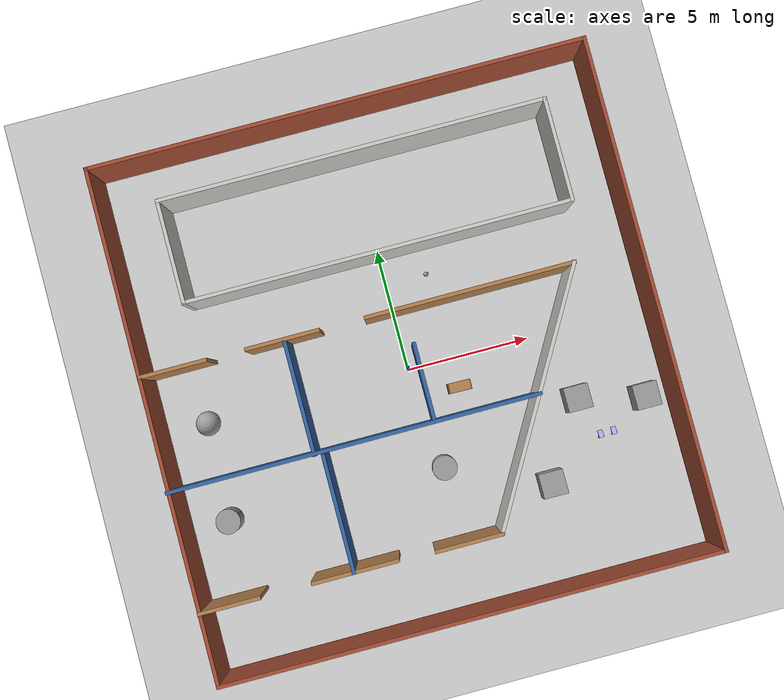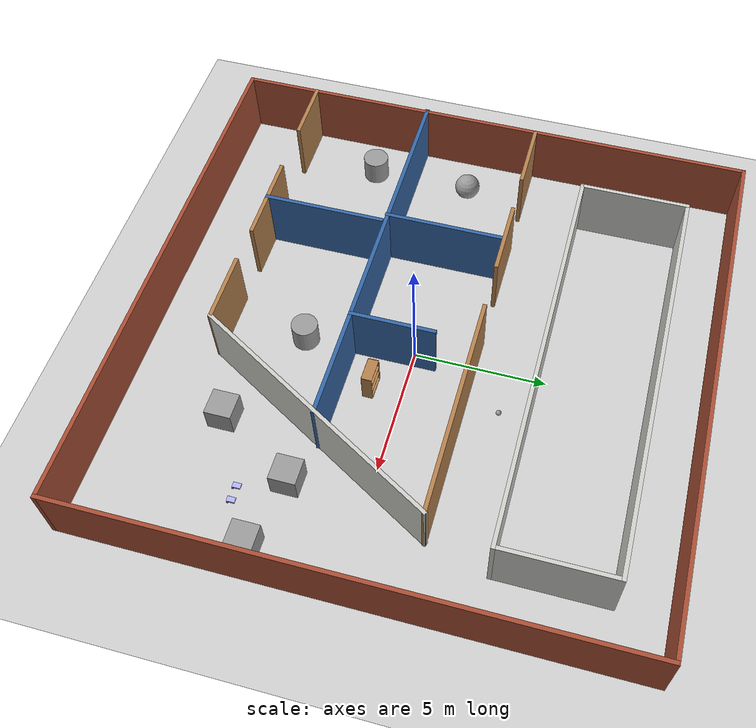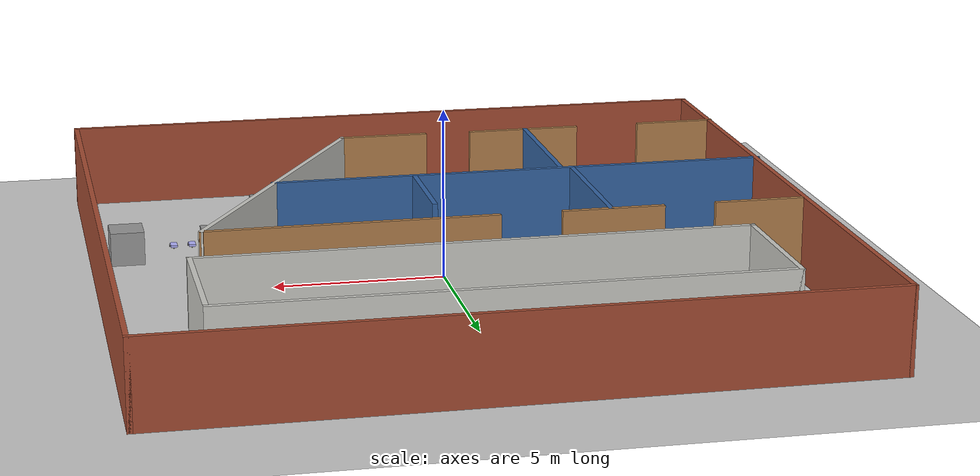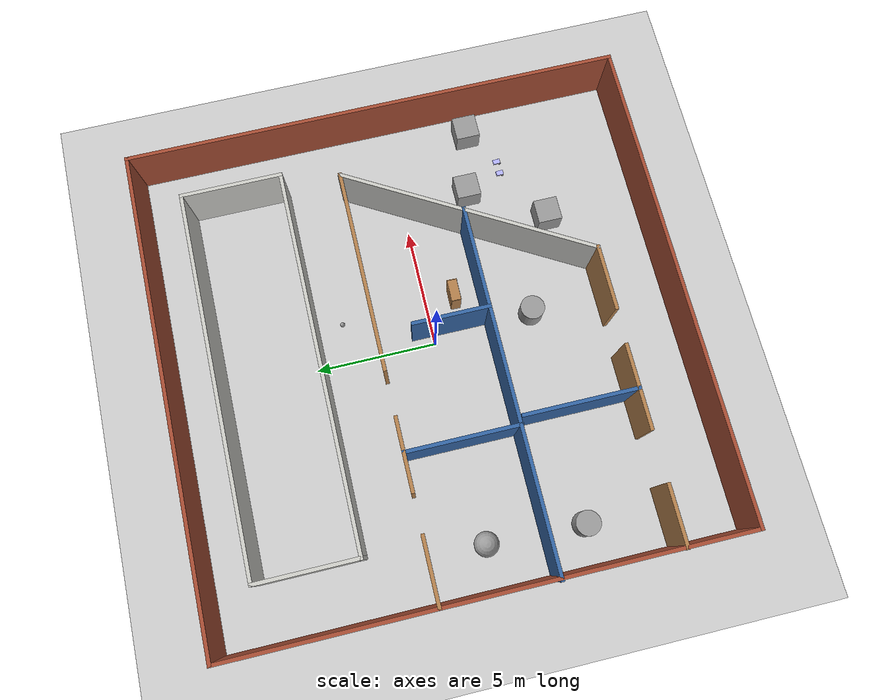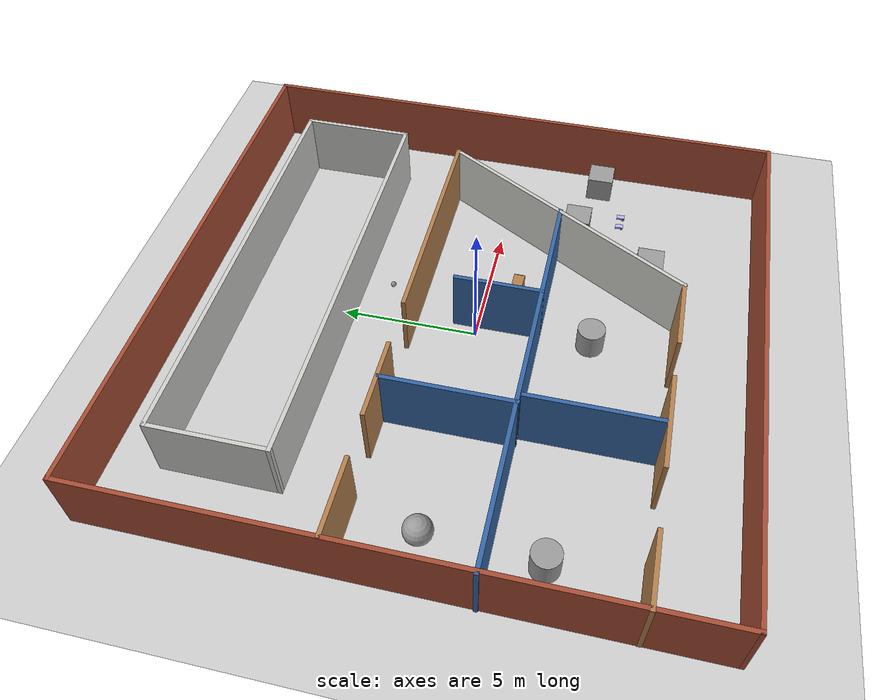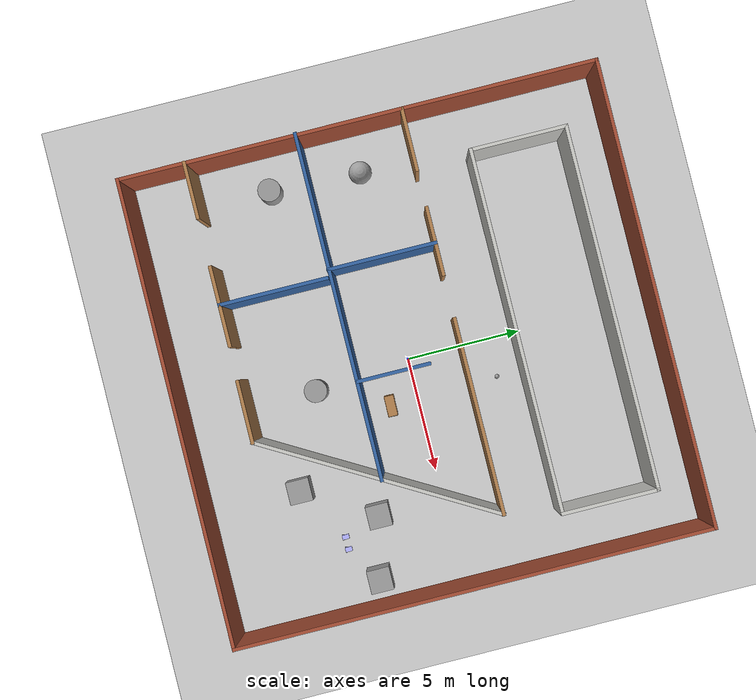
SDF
<sdf version="1.6">
 <world name="default">
  <light name="sun" type="directional">
   <pose>0 0 10 0 -0 0</pose>
   <diffuse>0.8 0.8 0.8 1</diffuse>
   <specular>0.2 0.2 0.2 1</specular>
   <attenuation>
    <range>1000</range>
    <constant>0.9</constant>
    <linear>0.01</linear>
    <quadratic>0.001</quadratic>
   </attenuation>
   <direction>-0.5 0.1 -0.9</direction>
  </light>
  <model name="ground_plane">
   <static>1</static>
   <link name="link">
    <collision name="collision">
     <geometry><plane><normal>0 0 1</normal><size>100 100</size></plane></geometry>
     <surface>
      <contact><collide_bitmask>65535</collide_bitmask></contact>
      <friction><ode><mu>100</mu><mu2>50</mu2></ode></friction>
     </surface>
    </collision>
    <visual name="visual">
     <cast_shadows>0</cast_shadows>
     <geometry><plane><normal>0 0 1</normal><size>100 100</size></plane></geometry>
     <material>
      <script><uri>file://media/materials/scripts/gazebo.material</uri><name>Gazebo/Grey</name></script>
     </material>
    </visual>
   </link>
  </model>
  <gravity>0 0 -9.8</gravity>
  <magnetic_field>6e-06 2.3e-05 -4.2e-05</magnetic_field>
  <atmosphere type="adiabatic"/>
  <physics name="default_physics" default="0" type="ode">
   <max_step_size>0.001</max_step_size>
   <real_time_factor>1</real_time_factor>
   <real_time_update_rate>1000</real_time_update_rate>
  </physics>
  <scene><ambient>0.4 0.4 0.4 1</ambient><background>0.7 0.7 0.7 1</background><shadows>1</shadows></scene>
  <audio><device>default</device></audio>
  <spherical_coordinates>
   <surface_model>EARTH_WGS84</surface_model>
   <latitude_deg>0</latitude_deg>
   <longitude_deg>0</longitude_deg>
   <elevation>0</elevation>
   <heading_deg>0</heading_deg>
  </spherical_coordinates>
  <model name="hostelM1">
   <pose>-0.12977 0.39552 0 0 -0 0</pose>
   <link name="Wall_10">
    <collision name="Wall_10_Collision">
     <geometry><box><size>4.25 0.15 2.5</size></box></geometry>
     <pose>0 0 1.25 0 -0 0</pose>
    </collision>
    <visual name="Wall_10_Visual">
     <pose>0 0 1.25 0 -0 0</pose>
     <geometry><box><size>4.25 0.15 2.5</size></box></geometry>
     <material>
      <script><uri>file://media/materials/scripts/gazebo.material</uri><name>Gazebo/CeilingTiled</name></script>
      <ambient>1 1 1 1</ambient>
     </material>
     <meta><layer>0</layer></meta>
    </visual>
    <pose>7.95036 6.33647 0 0 -0 -1.5708</pose>
   </link>
   <link name="Wall_11">
    <collision name="Wall_11_Collision">
     <geometry><box><size>15.75 0.15 2.5</size></box></geometry>
     <pose>0 0 1.25 0 -0 0</pose>
    </collision>
    <visual name="Wall_11_Visual">
     <pose>0 0 1.25 0 -0 0</pose>
     <geometry><box><size>15.75 0.15 2.5</size></box></geometry>
     <material>
      <script><uri>file://media/materials/scripts/gazebo.material</uri><name>Gazebo/CeilingTiled</name></script>
      <ambient>1 1 1 1</ambient>
     </material>
     <meta><layer>0</layer></meta>
    </visual>
    <pose>0.15036 4.28647 0 0 -0 3.14159</pose>
   </link>
   <link name="Wall_12">
    <collision name="Wall_12_Collision">
     <geometry><box><size>4.25 0.15 2.5</size></box></geometry>
     <pose>0 0 1.25 0 -0 0</pose>
    </collision>
    <visual name="Wall_12_Visual">
     <pose>0 0 1.25 0 -0 0</pose>
     <geometry><box><size>4.25 0.15 2.5</size></box></geometry>
     <material>
      <script><uri>file://media/materials/scripts/gazebo.material</uri><name>Gazebo/CeilingTiled</name></script>
      <ambient>1 1 1 1</ambient>
     </material>
     <meta><layer>0</layer></meta>
    </visual>
    <pose>-7.64964 6.33647 0 0 -0 1.5708</pose>
   </link>
   <link name="Wall_14">
    <collision name="Wall_14_Collision">
     <geometry><box><size>2.75 0.15 2.5</size></box></geometry>
     <pose>0 0 1.25 0 -0 0</pose>
    </collision>
    <visual name="Wall_14_Visual">
     <pose>0 0 1.25 0 -0 0</pose>
     <geometry><box><size>2.75 0.15 2.5</size></box></geometry>
     <material>
      <script><uri>file://media/materials/scripts/gazebo.material</uri><name>Gazebo/Wood</name></script>
      <ambient>0.203922 0.396078 0.643137 1</ambient>
     </material>
     <meta><layer>0</layer></meta>
    </visual>
    <pose>-8.69606 1.91358 0 0 -0 0</pose>
   </link>
   <link name="Wall_17">
    <collision name="Wall_17_Collision">
     <geometry><box><size>3 0.15 2.5</size></box></geometry>
     <pose>0 0 1.25 0 -0 0</pose>
    </collision>
    <visual name="Wall_17_Visual">
     <pose>0 0 1.25 0 -0 0</pose>
     <geometry><box><size>3 0.15 2.5</size></box></geometry>
     <material>
      <script><uri>file://media/materials/scripts/gazebo.material</uri><name>Gazebo/Wood</name></script>
      <ambient>0.203922 0.396078 0.643137 1</ambient>
     </material>
     <meta><layer>0</layer></meta>
    </visual>
    <pose>-4.32323 1.91358 0 0 -0 0</pose>
   </link>
   <link name="Wall_20">
    <collision name="Wall_20_Collision">
     <geometry><box><size>8.5 0.15 2.5</size></box></geometry>
     <pose>0 0 1.25 0 -0 0</pose>
    </collision>
    <visual name="Wall_20_Visual">
     <pose>0 0 1.25 0 -0 0</pose>
     <geometry><box><size>8.5 0.15 2.5</size></box></geometry>
     <material>
      <script><uri>file://media/materials/scripts/gazebo.material</uri><name>Gazebo/Wood</name></script>
      <ambient>0.203922 0.396078 0.643137 1</ambient>
     </material>
     <meta><layer>0</layer></meta>
    </visual>
    <pose>3.20053 1.91358 0 0 -0 0</pose>
   </link>
   <link name="Wall_21">
    <collision name="Wall_21_Collision">
     <geometry><box><size>11 0.15 2.5</size></box></geometry>
     <pose>0 0 1.25 0 -0 0</pose>
    </collision>
    <visual name="Wall_21_Visual">
     <pose>0 0 1.25 0 -0 0</pose>
     <geometry><box><size>11 0.15 2.5</size></box></geometry>
     <material>
      <script><uri>file://media/materials/scripts/gazebo.material</uri><name>Gazebo/CeilingTiled</name></script>
      <ambient>1 1 1 1</ambient>
     </material>
     <meta><layer>0</layer></meta>
    </visual>
    <pose>4.66303 -2.78461 0 0 -0 -2.0944</pose>
   </link>
   <link name="Wall_22">
    <collision name="Wall_22_Collision">
     <geometry><box><size>2.75 0.15 2.5</size></box></geometry>
     <pose>0 0 1.25 0 -0 0</pose>
    </collision>
    <visual name="Wall_22_Visual">
     <pose>0 0 1.25 0 -0 0</pose>
     <geometry><box><size>2.75 0.15 2.5</size></box></geometry>
     <material>
      <script><uri>file://media/materials/scripts/gazebo.material</uri><name>Gazebo/Wood</name></script>
      <ambient>1 1 1 1</ambient>
     </material>
     <meta><layer>0</layer></meta>
    </visual>
    <pose>0.650531 -7.4828 0 0 -0 3.14159</pose>
   </link>
   <link name="Wall_24">
    <collision name="Wall_24_Collision">
     <geometry><box><size>3.5 0.15 2.5</size></box></geometry>
     <pose>0 0 1.25 0 -0 0</pose>
    </collision>
    <visual name="Wall_24_Visual">
     <pose>0 0 1.25 0 -0 0</pose>
     <geometry><box><size>3.5 0.15 2.5</size></box></geometry>
     <material>
      <script><uri>file://media/materials/scripts/gazebo.material</uri><name>Gazebo/Wood</name></script>
      <ambient>1 1 1 1</ambient>
     </material>
     <meta><layer>0</layer></meta>
    </visual>
    <pose>-3.86314 -7.43166 0 0 -0 3.14159</pose>
   </link>
   <link name="Wall_26">
    <collision name="Wall_26_Collision">
     <geometry><box><size>2.5 0.15 2.5</size></box></geometry>
     <pose>0 0 1.25 0 -0 0</pose>
    </collision>
    <visual name="Wall_26_Visual">
     <pose>0 0 1.25 0 -0 0</pose>
     <geometry><box><size>2.5 0.15 2.5</size></box></geometry>
     <material>
      <script><uri>file://media/materials/scripts/gazebo.material</uri><name>Gazebo/Wood</name></script>
      <ambient>1 1 1 1</ambient>
     </material>
     <meta><layer>0</layer></meta>
    </visual>
    <pose>-8.8651 -7.43166 0 0 -0 3.14159</pose>
   </link>
   <link name="Wall_28">
    <collision name="Wall_28_Collision">
     <geometry><box><size>15 0.15 2.5</size></box></geometry>
     <pose>0 0 1.25 0 -0 0</pose>
    </collision>
    <visual name="Wall_28_Visual">
     <pose>0 0 1.25 0 -0 0</pose>
     <geometry><box><size>15 0.15 2.5</size></box></geometry>
     <material>
      <script><uri>file://media/materials/scripts/gazebo.material</uri><name>Gazebo/Grey</name></script>
      <ambient>0.203922 0.396078 0.643137 1</ambient>
     </material>
     <meta><layer>0</layer></meta>
    </visual>
    <pose>-2.65197 -2.6579 0 0 -0 0</pose>
   </link>
   <link name="Wall_32">
    <collision name="Wall_32_Collision">
     <geometry><box><size>4.75 0.15 2.5</size></box></geometry>
     <pose>0 0 1.25 0 -0 0</pose>
    </collision>
    <visual name="Wall_32_Visual">
     <pose>0 0 1.25 0 -0 0</pose>
     <geometry><box><size>4.75 0.15 2.5</size></box></geometry>
     <material>
      <script><uri>file://media/materials/scripts/gazebo.material</uri><name>Gazebo/Grey</name></script>
      <ambient>0.203922 0.396078 0.643137 1</ambient>
     </material>
     <meta><layer>0</layer></meta>
    </visual>
    <pose>-4.25137 -0.386422 0 0 -0 -1.5708</pose>
   </link>
   <link name="Wall_34">
    <collision name="Wall_34_Collision">
     <geometry><box><size>4.75 0.15 2.5</size></box></geometry>
     <pose>0 0 1.25 0 -0 0</pose>
    </collision>
    <visual name="Wall_34_Visual">
     <pose>0 0 1.25 0 -0 0</pose>
     <geometry><box><size>4.75 0.15 2.5</size></box></geometry>
     <material>
      <script><uri>file://media/materials/scripts/gazebo.material</uri><name>Gazebo/Grey</name></script>
      <ambient>0.203922 0.396078 0.643137 1</ambient>
     </material>
     <meta><layer>0</layer></meta>
    </visual>
    <pose>-3.92773 -5.13166 0 0 -0 1.5708</pose>
   </link>
   <link name="Wall_36">
    <collision name="Wall_36_Collision">
     <geometry><box><size>3.25 0.15 2.5</size></box></geometry>
     <pose>0 0 1.25 0 -0 0</pose>
    </collision>
    <visual name="Wall_36_Visual">
     <pose>0 0 1.25 0 -0 0</pose>
     <geometry><box><size>3.25 0.15 2.5</size></box></geometry>
     <material>
      <script><uri>file://media/materials/scripts/gazebo.material</uri><name>Gazebo/Grey</name></script>
      <ambient>0.203922 0.396078 0.643137 1</ambient>
     </material>
     <meta><layer>0</layer></meta>
    </visual>
    <pose>0.562842 -1.1079 0 0 -0 1.5708</pose>
   </link>
   <link name="Wall_4">
    <collision name="Wall_4_Collision">
     <geometry><box><size>20.25 0.15 2.5</size></box></geometry>
     <pose>0 0 1.25 0 -0 0</pose>
    </collision>
    <visual name="Wall_4_Visual">
     <pose>0 0 1.25 0 -0 0</pose>
     <geometry><box><size>20.25 0.15 2.5</size></box></geometry>
     <material>
      <script><uri>file://media/materials/scripts/gazebo.material</uri><name>Gazebo/Bricks</name></script>
      <ambient>1 1 1 1</ambient>
     </material>
     <meta><layer>0</layer></meta>
    </visual>
    <pose>0.026973 10.3 0 0 -0 0</pose>
   </link>
   <link name="Wall_5">
    <collision name="Wall_5_Collision">
     <geometry><box><size>20.75 0.15 2.5</size></box></geometry>
     <pose>0 0 1.25 0 -0 0</pose>
    </collision>
    <visual name="Wall_5_Visual">
     <pose>0 0 1.25 0 -0 0</pose>
     <geometry><box><size>20.75 0.15 2.5</size></box></geometry>
     <material>
      <script><uri>file://media/materials/scripts/gazebo.material</uri><name>Gazebo/Bricks</name></script>
      <ambient>1 1 1 1</ambient>
     </material>
     <meta><layer>0</layer></meta>
    </visual>
    <pose>10.077 0 0 0 -0 -1.5708</pose>
   </link>
   <link name="Wall_6">
    <collision name="Wall_6_Collision">
     <geometry><box><size>20.25 0.15 2.5</size></box></geometry>
     <pose>0 0 1.25 0 -0 0</pose>
    </collision>
    <visual name="Wall_6_Visual">
     <pose>0 0 1.25 0 -0 0</pose>
     <geometry><box><size>20.25 0.15 2.5</size></box></geometry>
     <material>
      <script><uri>file://media/materials/scripts/gazebo.material</uri><name>Gazebo/Bricks</name></script>
      <ambient>1 1 1 1</ambient>
     </material>
     <meta><layer>0</layer></meta>
    </visual>
    <pose>0.026973 -10.3 0 0 -0 3.14159</pose>
   </link>
   <link name="Wall_7">
    <collision name="Wall_7_Collision">
     <geometry><box><size>20.75 0.15 2.5</size></box></geometry>
     <pose>0 0 1.25 0 -0 0</pose>
    </collision>
    <visual name="Wall_7_Visual">
     <pose>0 0 1.25 0 -0 0</pose>
     <geometry><box><size>20.75 0.15 2.5</size></box></geometry>
     <material>
      <script><uri>file://media/materials/scripts/gazebo.material</uri><name>Gazebo/Bricks</name></script>
      <ambient>1 1 1 1</ambient>
     </material>
     <meta><layer>0</layer></meta>
    </visual>
    <pose>-10.023 0 0 0 -0 1.5708</pose>
   </link>
   <link name="Wall_9">
    <collision name="Wall_9_Collision">
     <geometry><box><size>15.75 0.15 2.5</size></box></geometry>
     <pose>0 0 1.25 0 -0 0</pose>
    </collision>
    <visual name="Wall_9_Visual">
     <pose>0 0 1.25 0 -0 0</pose>
     <geometry><box><size>15.75 0.15 2.5</size></box></geometry>
     <material>
      <script><uri>file://media/materials/scripts/gazebo.material</uri><name>Gazebo/CeilingTiled</name></script>
      <ambient>1 1 1 1</ambient>
     </material>
     <meta><layer>0</layer></meta>
    </visual>
    <pose>0.15036 8.38647 0 0 -0 0</pose>
   </link>
   <static>1</static>
  </model>
  <model name="bookshelf">
   <static>1</static>
   <link name="link">
    <inertial><mass>1</mass></inertial>
    <collision name="back">
     <pose>0 0.005 0.6 0 -0 0</pose>
     <geometry><box><size>0.9 0.01 1.2</size></box></geometry>
    </collision>
    <visual name="visual1">
     <pose>0 0.005 0.6 0 -0 0</pose>
     <geometry><box><size>0.9 0.01 1.2</size></box></geometry>
     <material>
      <script><uri>file://media/materials/scripts/gazebo.material</uri><name>Gazebo/Wood</name></script>
     </material>
    </visual>
    <collision name="left_side">
     <pose>0.45 -0.195 0.6 0 -0 0</pose>
     <geometry><box><size>0.02 0.4 1.2</size></box></geometry>
    </collision>
    <visual name="visual2">
     <pose>0.45 -0.195 0.6 0 -0 0</pose>
     <geometry><box><size>0.02 0.4 1.2</size></box></geometry>
     <material>
      <script><uri>file://media/materials/scripts/gazebo.material</uri><name>Gazebo/Wood</name></script>
     </material>
    </visual>
    <collision name="right_side">
     <pose>-0.45 -0.195 0.6 0 -0 0</pose>
     <geometry><box><size>0.02 0.4 1.2</size></box></geometry>
    </collision>
    <visual name="visual3">
     <pose>-0.45 -0.195 0.6 0 -0 0</pose>
     <geometry><box><size>0.02 0.4 1.2</size></box></geometry>
     <material>
      <script><uri>file://media/materials/scripts/gazebo.material</uri><name>Gazebo/Wood</name></script>
     </material>
    </visual>
    <collision name="bottom">
     <pose>0 -0.195 0.03 0 -0 0</pose>
     <geometry><box><size>0.88 0.4 0.06</size></box></geometry>
    </collision>
    <visual name="visual4">
     <pose>0 -0.195 0.03 0 -0 0</pose>
     <geometry><box><size>0.88 0.4 0.06</size></box></geometry>
     <material>
      <script><uri>file://media/materials/scripts/gazebo.material</uri><name>Gazebo/Wood</name></script>
     </material>
    </visual>
    <collision name="top">
     <pose>0 -0.195 1.19 0 -0 0</pose>
     <geometry><box><size>0.88 0.4 0.02</size></box></geometry>
    </collision>
    <visual name="visual5">
     <pose>0 -0.195 1.19 0 -0 0</pose>
     <geometry><box><size>0.88 0.4 0.02</size></box></geometry>
     <material>
      <script><uri>file://media/materials/scripts/gazebo.material</uri><name>Gazebo/Wood</name></script>
     </material>
    </visual>
    <collision name="low_shelf">
     <pose>0 -0.195 0.43 0 -0 0</pose>
     <geometry><box><size>0.88 0.4 0.02</size></box></geometry>
    </collision>
    <visual name="visual6">
     <pose>0 -0.195 0.43 0 -0 0</pose>
     <geometry><box><size>0.88 0.4 0.02</size></box></geometry>
     <material>
      <script><uri>file://media/materials/scripts/gazebo.material</uri><name>Gazebo/Wood</name></script>
     </material>
    </visual>
    <collision name="high_shelf">
     <pose>0 -0.195 0.8 0 -0 0</pose>
     <geometry><box><size>0.88 0.4 0.02</size></box></geometry>
    </collision>
    <visual name="visual7">
     <pose>0 -0.195 0.8 0 -0 0</pose>
     <geometry><box><size>0.88 0.4 0.02</size></box></geometry>
     <material>
      <script><uri>file://media/materials/scripts/gazebo.material</uri><name>Gazebo/Wood</name></script>
     </material>
    </visual>
   </link>
   <pose>1.78073 -1.38425 0 0 -0 3.12902</pose>
  </model>
  <model name="pseudoAsimov">
   <link name="link_0">
    <inertial>
     <mass>1</mass>
     <inertia>
      <ixx>0.166667</ixx>
      <ixy>0</ixy>
      <ixz>0</ixz>
      <iyy>0.166667</iyy>
      <iyz>0</iyz>
      <izz>0.166667</izz>
     </inertia>
    </inertial>
    <pose>0 0 0.05565 -0 -0 -0</pose>
    <visual name="visual">
     <geometry><box><size>0.2 0.306 0.07</size></box></geometry>
     <material>
      <lighting>1</lighting>
      <script><uri>file://media/materials/scripts/gazebo.material</uri><name>Gazebo/Grey</name></script>
      <shader type="vertex"><normal_map>__default__</normal_map></shader>
      <ambient>0.3 0.3 1 1</ambient>
      <diffuse>0.7 0.7 1 1</diffuse>
      <specular>0.01 0.01 1 1</specular>
      <emissive>0 0 0 1</emissive>
     </material>
    </visual>
    <collision name="collision">
     <geometry><box><size>0.2 0.306 0.07</size></box></geometry>
     <surface>
      <friction>
       <ode><mu>1</mu><mu2>1</mu2><fdir1>0 0 0</fdir1><slip1>0</slip1><slip2>0</slip2></ode>
       <torsional>
        <coefficient>1</coefficient>
        <patch_radius>0</patch_radius>
        <surface_radius>0</surface_radius>
        <use_patch_radius>1</use_patch_radius>
        <ode><slip>0</slip></ode>
       </torsional>
      </friction>
      <bounce><restitution_coefficient>0</restitution_coefficient><threshold>1e+06</threshold></bounce>
      <contact>
       <collide_without_contact>0</collide_without_contact>
       <collide_without_contact_bitmask>1</collide_without_contact_bitmask>
       <collide_bitmask>1</collide_bitmask>
       <ode>
        <soft_cfm>0</soft_cfm>
        <soft_erp>0.2</soft_erp>
        <kp>1e+13</kp>
        <kd>1</kd>
        <max_vel>0.01</max_vel>
        <min_depth>0</min_depth>
       </ode>
       <bullet>
        <split_impulse>1</split_impulse>
        <split_impulse_penetration_threshold>-0.01</split_impulse_penetration_threshold>
        <soft_cfm>0</soft_cfm>
        <soft_erp>0.2</soft_erp>
        <kp>1e+13</kp>
        <kd>1</kd>
       </bullet>
      </contact>
     </surface>
    </collision>
   </link>
   <link name="link_0_0_clone">
    <inertial>
     <mass>1</mass>
     <inertia><ixx>0.145833</ixx><ixy>0</ixy><ixz>0</ixz><iyy>0.145833</iyy><iyz>0</iyz><izz>0.125</izz></inertia>
    </inertial>
    <pose>0.110004 -0.10935 0.016023 -2.8e-05 -1.5707 2.8e-05</pose>
    <visual name="visual_0">
     <geometry><cylinder><radius>0.04365</radius><length>0.02</length></cylinder></geometry>
     <material>
      <lighting>1</lighting>
      <script><uri>file://media/materials/scripts/gazebo.material</uri><name>Gazebo/Grey</name></script>
      <shader type="vertex"><normal_map>__default__</normal_map></shader>
      <ambient>0 0 0 1</ambient>
      <diffuse>0.7 0.7 0.7 1</diffuse>
      <specular>0.01 0.01 0.01 1</specular>
      <emissive>0 0 0 1</emissive>
     </material>
    </visual>
    <collision name="collision">
     <geometry><cylinder><radius>0.04365</radius><length>0.02</length></cylinder></geometry>
     <surface>
      <friction>
       <ode><mu>1</mu><mu2>1</mu2><fdir1>0 0 0</fdir1><slip1>0</slip1><slip2>0</slip2></ode>
       <torsional>
        <coefficient>1</coefficient>
        <patch_radius>0</patch_radius>
        <surface_radius>0</surface_radius>
        <use_patch_radius>1</use_patch_radius>
        <ode><slip>0</slip></ode>
       </torsional>
      </friction>
      <bounce><restitution_coefficient>0</restitution_coefficient><threshold>1e+06</threshold></bounce>
      <contact>
       <collide_without_contact>0</collide_without_contact>
       <collide_without_contact_bitmask>1</collide_without_contact_bitmask>
       <collide_bitmask>1</collide_bitmask>
       <ode>
        <soft_cfm>0</soft_cfm>
        <soft_erp>0.2</soft_erp>
        <kp>1e+13</kp>
        <kd>1</kd>
        <max_vel>0.01</max_vel>
        <min_depth>0</min_depth>
       </ode>
       <bullet>
        <split_impulse>1</split_impulse>
        <split_impulse_penetration_threshold>-0.01</split_impulse_penetration_threshold>
        <soft_cfm>0</soft_cfm>
        <soft_erp>0.2</soft_erp>
        <kp>1e+13</kp>
        <kd>1</kd>
       </bullet>
      </contact>
     </surface>
    </collision>
   </link>
   <link name="link_0_0_clone_clone">
    <inertial>
     <mass>1</mass>
     <inertia><ixx>0.145833</ixx><ixy>0</ixy><ixz>0</ixz><iyy>0.145833</iyy><iyz>0</iyz><izz>0.125</izz></inertia>
    </inertial>
    <pose>-0.110004 -0.10935 0.016023 -2.8e-05 -1.5707 2.8e-05</pose>
    <visual name="visual_0">
     <geometry><cylinder><radius>0.04365</radius><length>0.02</length></cylinder></geometry>
     <material>
      <lighting>1</lighting>
      <script><uri>file://media/materials/scripts/gazebo.material</uri><name>Gazebo/Grey</name></script>
      <shader type="vertex"><normal_map>__default__</normal_map></shader>
      <ambient>0 0 0 1</ambient>
      <diffuse>0.7 0.7 0.7 1</diffuse>
      <specular>0.01 0.01 0.01 1</specular>
      <emissive>0 0 0 1</emissive>
     </material>
    </visual>
    <collision name="collision">
     <geometry><cylinder><radius>0.04365</radius><length>0.02</length></cylinder></geometry>
     <surface>
      <friction>
       <ode><mu>1</mu><mu2>1</mu2><fdir1>0 0 0</fdir1><slip1>0</slip1><slip2>0</slip2></ode>
       <torsional>
        <coefficient>1</coefficient>
        <patch_radius>0</patch_radius>
        <surface_radius>0</surface_radius>
        <use_patch_radius>1</use_patch_radius>
        <ode><slip>0</slip></ode>
       </torsional>
      </friction>
      <bounce><restitution_coefficient>0</restitution_coefficient><threshold>1e+06</threshold></bounce>
      <contact>
       <collide_without_contact>0</collide_without_contact>
       <collide_without_contact_bitmask>1</collide_without_contact_bitmask>
       <collide_bitmask>1</collide_bitmask>
       <ode>
        <soft_cfm>0</soft_cfm>
        <soft_erp>0.2</soft_erp>
        <kp>1e+13</kp>
        <kd>1</kd>
        <max_vel>0.01</max_vel>
        <min_depth>0</min_depth>
       </ode>
       <bullet>
        <split_impulse>1</split_impulse>
        <split_impulse_penetration_threshold>-0.01</split_impulse_penetration_threshold>
        <soft_cfm>0</soft_cfm>
        <soft_erp>0.2</soft_erp>
        <kp>1e+13</kp>
        <kd>1</kd>
       </bullet>
      </contact>
     </surface>
    </collision>
   </link>
   <link name="link_2">
    <inertial>
     <mass>1</mass>
     <inertia><ixx>0.1</ixx><ixy>0</ixy><ixz>0</ixz><iyy>0.1</iyy><iyz>0</iyz><izz>0.1</izz></inertia>
    </inertial>
    <pose>0.005527 0.128926 0.007614 -0 -0 -0</pose>
    <visual name="visual">
     <geometry><sphere><radius>0.02682</radius></sphere></geometry>
     <material>
      <lighting>1</lighting>
      <script><uri>file://media/materials/scripts/gazebo.material</uri><name>Gazebo/Grey</name></script>
      <shader type="vertex"><normal_map>__default__</normal_map></shader>
      <ambient>0.3 0.3 0.3 1</ambient>
      <diffuse>0.7 0.7 0.7 1</diffuse>
      <specular>0.01 0.01 0.01 1</specular>
      <emissive>0 0 0 1</emissive>
     </material>
    </visual>
    <collision name="collision">
     <geometry><sphere><radius>0.02682</radius></sphere></geometry>
     <surface>
      <friction>
       <ode><mu>1</mu><mu2>1</mu2><fdir1>0 0 0</fdir1><slip1>0</slip1><slip2>0</slip2></ode>
       <torsional>
        <coefficient>1</coefficient>
        <patch_radius>0</patch_radius>
        <surface_radius>0</surface_radius>
        <use_patch_radius>1</use_patch_radius>
        <ode><slip>0</slip></ode>
       </torsional>
      </friction>
      <bounce><restitution_coefficient>0</restitution_coefficient><threshold>1e+06</threshold></bounce>
      <contact>
       <collide_without_contact>0</collide_without_contact>
       <collide_without_contact_bitmask>1</collide_without_contact_bitmask>
       <collide_bitmask>1</collide_bitmask>
       <ode>
        <soft_cfm>0</soft_cfm>
        <soft_erp>0.2</soft_erp>
        <kp>1e+13</kp>
        <kd>1</kd>
        <max_vel>0.01</max_vel>
        <min_depth>0</min_depth>
       </ode>
       <bullet>
        <split_impulse>1</split_impulse>
        <split_impulse_penetration_threshold>-0.01</split_impulse_penetration_threshold>
        <soft_cfm>0</soft_cfm>
        <soft_erp>0.2</soft_erp>
        <kp>1e+13</kp>
        <kd>1</kd>
       </bullet>
      </contact>
     </surface>
    </collision>
   </link>
   <joint name="link_0_JOINT_4" type="revolute">
    <parent>link_0</parent>
    <child>link_0_0_clone_clone</child>
    <axis>
     <xyz>-0 -0 -1</xyz>
     <use_parent_model_frame>0</use_parent_model_frame>
     <limit>
      <lower>-1.79769e+308</lower>
      <upper>1.79769e+308</upper>
      <effort>-1</effort>
      <velocity>-1</velocity>
     </limit>
     <dynamics>
      <spring_reference>0</spring_reference>
      <spring_stiffness>0</spring_stiffness>
      <damping>0</damping>
      <friction>0</friction>
     </dynamics>
    </axis>
    <physics>
     <ode><limit><cfm>0</cfm><erp>0.2</erp></limit><suspension><cfm>0</cfm><erp>0.2</erp></suspension></ode>
    </physics>
   </joint>
   <joint name="link_0_JOINT_5" type="revolute">
    <parent>link_0</parent>
    <child>link_0_0_clone</child>
    <axis>
     <xyz>0 0 1</xyz>
     <use_parent_model_frame>0</use_parent_model_frame>
     <limit>
      <lower>-1.79769e+308</lower>
      <upper>1.79769e+308</upper>
      <effort>-1</effort>
      <velocity>-1</velocity>
     </limit>
     <dynamics>
      <spring_reference>0</spring_reference>
      <spring_stiffness>0</spring_stiffness>
      <damping>0</damping>
      <friction>0</friction>
     </dynamics>
    </axis>
    <physics>
     <ode><limit><cfm>0</cfm><erp>0.2</erp></limit><suspension><cfm>0</cfm><erp>0.2</erp></suspension></ode>
    </physics>
   </joint>
   <joint name="link_0_JOINT_6" type="ball">
    <parent>link_0</parent>
    <child>link_2</child>
    <physics>
     <ode><limit><cfm>0</cfm><erp>0.2</erp></limit><suspension><cfm>0</cfm><erp>0.2</erp></suspension></ode>
    </physics>
   </joint>
   <static>0</static>
   <pose>7.43546 -4.52953 0.023771 -0.035377 -4e-06 0.017092</pose>
  </model>
  <model name="robotTry2_0">
   <link name="link_0">
    <inertial>
     <mass>1</mass>
     <inertia>
      <ixx>0.166667</ixx>
      <ixy>0</ixy>
      <ixz>0</ixz>
      <iyy>0.166667</iyy>
      <iyz>0</iyz>
      <izz>0.166667</izz>
     </inertia>
    </inertial>
    <pose>0 0 0.05565 -0 -0 -0</pose>
    <visual name="visual">
     <geometry><box><size>0.2 0.306 0.07</size></box></geometry>
     <material>
      <lighting>1</lighting>
      <script><uri>file://media/materials/scripts/gazebo.material</uri><name>Gazebo/Grey</name></script>
      <shader type="vertex"><normal_map>__default__</normal_map></shader>
      <ambient>0.3 0.3 1 1</ambient>
      <diffuse>0.7 0.7 1 1</diffuse>
      <specular>0.01 0.01 1 1</specular>
      <emissive>0 0 0 1</emissive>
     </material>
    </visual>
    <collision name="collision">
     <geometry><box><size>0.2 0.306 0.07</size></box></geometry>
     <surface>
      <friction>
       <ode><mu>1</mu><mu2>1</mu2><fdir1>0 0 0</fdir1><slip1>0</slip1><slip2>0</slip2></ode>
       <torsional>
        <coefficient>1</coefficient>
        <patch_radius>0</patch_radius>
        <surface_radius>0</surface_radius>
        <use_patch_radius>1</use_patch_radius>
        <ode><slip>0</slip></ode>
       </torsional>
      </friction>
      <bounce><restitution_coefficient>0</restitution_coefficient><threshold>1e+06</threshold></bounce>
      <contact>
       <collide_without_contact>0</collide_without_contact>
       <collide_without_contact_bitmask>1</collide_without_contact_bitmask>
       <collide_bitmask>1</collide_bitmask>
       <ode>
        <soft_cfm>0</soft_cfm>
        <soft_erp>0.2</soft_erp>
        <kp>1e+13</kp>
        <kd>1</kd>
        <max_vel>0.01</max_vel>
        <min_depth>0</min_depth>
       </ode>
       <bullet>
        <split_impulse>1</split_impulse>
        <split_impulse_penetration_threshold>-0.01</split_impulse_penetration_threshold>
        <soft_cfm>0</soft_cfm>
        <soft_erp>0.2</soft_erp>
        <kp>1e+13</kp>
        <kd>1</kd>
       </bullet>
      </contact>
     </surface>
    </collision>
   </link>
   <link name="link_0_0_clone">
    <inertial>
     <mass>1</mass>
     <inertia><ixx>0.145833</ixx><ixy>0</ixy><ixz>0</ixz><iyy>0.145833</iyy><iyz>0</iyz><izz>0.125</izz></inertia>
    </inertial>
    <pose>0.110004 -0.10935 0.016023 -2.8e-05 -1.5707 2.8e-05</pose>
    <visual name="visual_0">
     <geometry><cylinder><radius>0.04365</radius><length>0.02</length></cylinder></geometry>
     <material>
      <lighting>1</lighting>
      <script><uri>file://media/materials/scripts/gazebo.material</uri><name>Gazebo/Grey</name></script>
      <shader type="vertex"><normal_map>__default__</normal_map></shader>
      <ambient>0 0 0 1</ambient>
      <diffuse>0.7 0.7 0.7 1</diffuse>
      <specular>0.01 0.01 0.01 1</specular>
      <emissive>0 0 0 1</emissive>
     </material>
    </visual>
    <collision name="collision">
     <geometry><cylinder><radius>0.04365</radius><length>0.02</length></cylinder></geometry>
     <surface>
      <friction>
       <ode><mu>1</mu><mu2>1</mu2><fdir1>0 0 0</fdir1><slip1>0</slip1><slip2>0</slip2></ode>
       <torsional>
        <coefficient>1</coefficient>
        <patch_radius>0</patch_radius>
        <surface_radius>0</surface_radius>
        <use_patch_radius>1</use_patch_radius>
        <ode><slip>0</slip></ode>
       </torsional>
      </friction>
      <bounce><restitution_coefficient>0</restitution_coefficient><threshold>1e+06</threshold></bounce>
      <contact>
       <collide_without_contact>0</collide_without_contact>
       <collide_without_contact_bitmask>1</collide_without_contact_bitmask>
       <collide_bitmask>1</collide_bitmask>
       <ode>
        <soft_cfm>0</soft_cfm>
        <soft_erp>0.2</soft_erp>
        <kp>1e+13</kp>
        <kd>1</kd>
        <max_vel>0.01</max_vel>
        <min_depth>0</min_depth>
       </ode>
       <bullet>
        <split_impulse>1</split_impulse>
        <split_impulse_penetration_threshold>-0.01</split_impulse_penetration_threshold>
        <soft_cfm>0</soft_cfm>
        <soft_erp>0.2</soft_erp>
        <kp>1e+13</kp>
        <kd>1</kd>
       </bullet>
      </contact>
     </surface>
    </collision>
   </link>
   <link name="link_0_0_clone_clone">
    <inertial>
     <mass>1</mass>
     <inertia><ixx>0.145833</ixx><ixy>0</ixy><ixz>0</ixz><iyy>0.145833</iyy><iyz>0</iyz><izz>0.125</izz></inertia>
    </inertial>
    <pose>-0.110004 -0.10935 0.016023 -2.8e-05 -1.5707 2.8e-05</pose>
    <visual name="visual_0">
     <geometry><cylinder><radius>0.04365</radius><length>0.02</length></cylinder></geometry>
     <material>
      <lighting>1</lighting>
      <script><uri>file://media/materials/scripts/gazebo.material</uri><name>Gazebo/Grey</name></script>
      <shader type="vertex"><normal_map>__default__</normal_map></shader>
      <ambient>0 0 0 1</ambient>
      <diffuse>0.7 0.7 0.7 1</diffuse>
      <specular>0.01 0.01 0.01 1</specular>
      <emissive>0 0 0 1</emissive>
     </material>
    </visual>
    <collision name="collision">
     <geometry><cylinder><radius>0.04365</radius><length>0.02</length></cylinder></geometry>
     <surface>
      <friction>
       <ode><mu>1</mu><mu2>1</mu2><fdir1>0 0 0</fdir1><slip1>0</slip1><slip2>0</slip2></ode>
       <torsional>
        <coefficient>1</coefficient>
        <patch_radius>0</patch_radius>
        <surface_radius>0</surface_radius>
        <use_patch_radius>1</use_patch_radius>
        <ode><slip>0</slip></ode>
       </torsional>
      </friction>
      <bounce><restitution_coefficient>0</restitution_coefficient><threshold>1e+06</threshold></bounce>
      <contact>
       <collide_without_contact>0</collide_without_contact>
       <collide_without_contact_bitmask>1</collide_without_contact_bitmask>
       <collide_bitmask>1</collide_bitmask>
       <ode>
        <soft_cfm>0</soft_cfm>
        <soft_erp>0.2</soft_erp>
        <kp>1e+13</kp>
        <kd>1</kd>
        <max_vel>0.01</max_vel>
        <min_depth>0</min_depth>
       </ode>
       <bullet>
        <split_impulse>1</split_impulse>
        <split_impulse_penetration_threshold>-0.01</split_impulse_penetration_threshold>
        <soft_cfm>0</soft_cfm>
        <soft_erp>0.2</soft_erp>
        <kp>1e+13</kp>
        <kd>1</kd>
       </bullet>
      </contact>
     </surface>
    </collision>
   </link>
   <link name="link_2">
    <inertial>
     <mass>1</mass>
     <inertia><ixx>0.1</ixx><ixy>0</ixy><ixz>0</ixz><iyy>0.1</iyy><iyz>0</iyz><izz>0.1</izz></inertia>
    </inertial>
    <pose>0.005527 0.128926 0.007614 -0 -0 -0</pose>
    <visual name="visual">
     <geometry><sphere><radius>0.02682</radius></sphere></geometry>
     <material>
      <lighting>1</lighting>
      <script><uri>file://media/materials/scripts/gazebo.material</uri><name>Gazebo/Grey</name></script>
      <shader type="vertex"><normal_map>__default__</normal_map></shader>
      <ambient>0.3 0.3 0.3 1</ambient>
      <diffuse>0.7 0.7 0.7 1</diffuse>
      <specular>0.01 0.01 0.01 1</specular>
      <emissive>0 0 0 1</emissive>
     </material>
    </visual>
    <collision name="collision">
     <geometry><sphere><radius>0.02682</radius></sphere></geometry>
     <surface>
      <friction>
       <ode><mu>1</mu><mu2>1</mu2><fdir1>0 0 0</fdir1><slip1>0</slip1><slip2>0</slip2></ode>
       <torsional>
        <coefficient>1</coefficient>
        <patch_radius>0</patch_radius>
        <surface_radius>0</surface_radius>
        <use_patch_radius>1</use_patch_radius>
        <ode><slip>0</slip></ode>
       </torsional>
      </friction>
      <bounce><restitution_coefficient>0</restitution_coefficient><threshold>1e+06</threshold></bounce>
      <contact>
       <collide_without_contact>0</collide_without_contact>
       <collide_without_contact_bitmask>1</collide_without_contact_bitmask>
       <collide_bitmask>1</collide_bitmask>
       <ode>
        <soft_cfm>0</soft_cfm>
        <soft_erp>0.2</soft_erp>
        <kp>1e+13</kp>
        <kd>1</kd>
        <max_vel>0.01</max_vel>
        <min_depth>0</min_depth>
       </ode>
       <bullet>
        <split_impulse>1</split_impulse>
        <split_impulse_penetration_threshold>-0.01</split_impulse_penetration_threshold>
        <soft_cfm>0</soft_cfm>
        <soft_erp>0.2</soft_erp>
        <kp>1e+13</kp>
        <kd>1</kd>
       </bullet>
      </contact>
     </surface>
    </collision>
   </link>
   <joint name="link_0_JOINT_4" type="revolute">
    <parent>link_0</parent>
    <child>link_0_0_clone_clone</child>
    <axis>
     <xyz>-0 -0 -1</xyz>
     <use_parent_model_frame>0</use_parent_model_frame>
     <limit>
      <lower>-1.79769e+308</lower>
      <upper>1.79769e+308</upper>
      <effort>-1</effort>
      <velocity>-1</velocity>
     </limit>
     <dynamics>
      <spring_reference>0</spring_reference>
      <spring_stiffness>0</spring_stiffness>
      <damping>0</damping>
      <friction>0</friction>
     </dynamics>
    </axis>
    <physics>
     <ode><limit><cfm>0</cfm><erp>0.2</erp></limit><suspension><cfm>0</cfm><erp>0.2</erp></suspension></ode>
    </physics>
   </joint>
   <joint name="link_0_JOINT_5" type="revolute">
    <parent>link_0</parent>
    <child>link_0_0_clone</child>
    <axis>
     <xyz>0 0 1</xyz>
     <use_parent_model_frame>0</use_parent_model_frame>
     <limit>
      <lower>-1.79769e+308</lower>
      <upper>1.79769e+308</upper>
      <effort>-1</effort>
      <velocity>-1</velocity>
     </limit>
     <dynamics>
      <spring_reference>0</spring_reference>
      <spring_stiffness>0</spring_stiffness>
      <damping>0</damping>
      <friction>0</friction>
     </dynamics>
    </axis>
    <physics>
     <ode><limit><cfm>0</cfm><erp>0.2</erp></limit><suspension><cfm>0</cfm><erp>0.2</erp></suspension></ode>
    </physics>
   </joint>
   <joint name="link_0_JOINT_6" type="ball">
    <parent>link_0</parent>
    <child>link_2</child>
    <physics>
     <ode><limit><cfm>0</cfm><erp>0.2</erp></limit><suspension><cfm>0</cfm><erp>0.2</erp></suspension></ode>
    </physics>
   </joint>
   <static>0</static>
   <pose>6.88332 -4.52952 0.02377 -0.035375 -3e-06 0.023408</pose>
  </model>
  <model name="unit_box_0">
   <pose>4.38894 -5.90294 0.499995 0 -1e-05 0</pose>
   <link name="link">
    <inertial>
     <mass>1</mass>
     <inertia>
      <ixx>0.166667</ixx>
      <ixy>0</ixy>
      <ixz>0</ixz>
      <iyy>0.166667</iyy>
      <iyz>0</iyz>
      <izz>0.166667</izz>
     </inertia>
    </inertial>
    <collision name="collision"><geometry><box><size>1 1 1</size></box></geometry></collision>
    <visual name="visual">
     <geometry><box><size>1 1 1</size></box></geometry>
     <material>
      <script><name>Gazebo/Grey</name><uri>file://media/materials/scripts/gazebo.material</uri></script>
     </material>
    </visual>
   </link>
  </model>
  <model name="unit_box_1">
   <pose>8.92464 -3.45546 0.499995 -1e-05 0 0</pose>
   <link name="link">
    <inertial>
     <mass>1</mass>
     <inertia>
      <ixx>0.166667</ixx>
      <ixy>0</ixy>
      <ixz>0</ixz>
      <iyy>0.166667</iyy>
      <iyz>0</iyz>
      <izz>0.166667</izz>
     </inertia>
    </inertial>
    <collision name="collision"><geometry><box><size>1 1 1</size></box></geometry></collision>
    <visual name="visual">
     <geometry><box><size>1 1 1</size></box></geometry>
     <material>
      <script><name>Gazebo/Grey</name><uri>file://media/materials/scripts/gazebo.material</uri></script>
     </material>
    </visual>
   </link>
  </model>
  <model name="unit_box">
   <link name="link">
    <inertial>
     <mass>1</mass>
     <inertia>
      <ixx>0.166667</ixx>
      <ixy>0</ixy>
      <ixz>0</ixz>
      <iyy>0.166667</iyy>
      <iyz>0</iyz>
      <izz>0.166667</izz>
     </inertia>
    </inertial>
    <visual name="visual">
     <geometry><box><size>1 1 1</size></box></geometry>
     <material>
      <script><name>Gazebo/Grey</name><uri>file://media/materials/scripts/gazebo.material</uri></script>
      <ambient>0.5 0.5 0.5 0</ambient>
      <shader type="vertex"><normal_map>__default__</normal_map></shader>
      <diffuse>0.7 0.7 0.7 1</diffuse>
      <specular>0.01 0.01 0.01 1</specular>
      <emissive>0 0 0 1</emissive>
     </material>
    </visual>
    <collision name="collision">
     <geometry><box><size>1 1 1</size></box></geometry>
     <surface>
      <friction>
       <ode><mu>1</mu><mu2>1</mu2><fdir1>0 0 0</fdir1><slip1>0</slip1><slip2>0</slip2></ode>
       <torsional>
        <coefficient>1</coefficient>
        <patch_radius>0</patch_radius>
        <surface_radius>0</surface_radius>
        <use_patch_radius>1</use_patch_radius>
        <ode><slip>0</slip></ode>
       </torsional>
      </friction>
      <bounce><restitution_coefficient>0</restitution_coefficient><threshold>1e+06</threshold></bounce>
      <contact>
       <collide_without_contact>0</collide_without_contact>
       <collide_without_contact_bitmask>1</collide_without_contact_bitmask>
       <collide_bitmask>1</collide_bitmask>
       <ode>
        <soft_cfm>0</soft_cfm>
        <soft_erp>0.2</soft_erp>
        <kp>1e+13</kp>
        <kd>1</kd>
        <max_vel>0.01</max_vel>
        <min_depth>0</min_depth>
       </ode>
       <bullet>
        <split_impulse>1</split_impulse>
        <split_impulse_penetration_threshold>-0.01</split_impulse_penetration_threshold>
        <soft_cfm>0</soft_cfm>
        <soft_erp>0.2</soft_erp>
        <kp>1e+13</kp>
        <kd>1</kd>
       </bullet>
      </contact>
     </surface>
    </collision>
   </link>
   <static>0</static>
   <pose>6.24568 -2.84791 0.499995 0 -1e-05 0</pose>
  </model>
  <model name="unit_cylinder">
   <pose>-8.48952 -4.01757 0.499993 -3e-06 -4e-06 -0</pose>
   <link name="link">
    <inertial>
     <mass>1</mass>
     <inertia><ixx>0.145833</ixx><ixy>0</ixy><ixz>0</ixz><iyy>0.145833</iyy><iyz>0</iyz><izz>0.125</izz></inertia>
    </inertial>
    <collision name="collision">
     <geometry><cylinder><radius>0.5</radius><length>1</length></cylinder></geometry>
    </collision>
    <visual name="visual">
     <geometry><cylinder><radius>0.5</radius><length>1</length></cylinder></geometry>
     <material>
      <script><name>Gazebo/Grey</name><uri>file://media/materials/scripts/gazebo.material</uri></script>
     </material>
    </visual>
   </link>
  </model>
  <model name="unit_sphere">
   <pose>-8.35537 -0.032247 0.5 0 -0 0</pose>
   <link name="link">
    <inertial>
     <mass>1</mass>
     <inertia><ixx>0.1</ixx><ixy>0</ixy><ixz>0</ixz><iyy>0.1</iyy><iyz>0</iyz><izz>0.1</izz></inertia>
    </inertial>
    <collision name="collision"><geometry><sphere><radius>0.5</radius></sphere></geometry></collision>
    <visual name="visual">
     <geometry><sphere><radius>0.5</radius></sphere></geometry>
     <material>
      <script><name>Gazebo/Grey</name><uri>file://media/materials/scripts/gazebo.material</uri></script>
     </material>
    </visual>
   </link>
  </model>
  <model name="unit_cylinder_0">
   <pose>0.380986 -4.17307 0.499993 -3e-06 -4e-06 -0</pose>
   <link name="link">
    <inertial>
     <mass>1</mass>
     <inertia><ixx>0.145833</ixx><ixy>0</ixy><ixz>0</ixz><iyy>0.145833</iyy><iyz>0</iyz><izz>0.125</izz></inertia>
    </inertial>
    <collision name="collision">
     <geometry><cylinder><radius>0.5</radius><length>1</length></cylinder></geometry>
    </collision>
    <visual name="visual">
     <geometry><cylinder><radius>0.5</radius><length>1</length></cylinder></geometry>
     <material>
      <script><name>Gazebo/Grey</name><uri>file://media/materials/scripts/gazebo.material</uri></script>
     </material>
    </visual>
   </link>
  </model>
  <model name="my_ball">
   <link name="link_0">
    <inertial>
     <mass>1</mass>
     <inertia><ixx>0.1</ixx><ixy>0</ixy><ixz>0</ixz><iyy>0.1</iyy><iyz>0</iyz><izz>0.1</izz></inertia>
    </inertial>
    <visual name="visual">
     <geometry><sphere><radius>0.1</radius></sphere></geometry>
     <material>
      <lighting>1</lighting>
      <script><uri>file://media/materials/scripts/gazebo.material</uri><name>Gazebo/Grey</name></script>
      <shader type="vertex"><normal_map>__default__</normal_map></shader>
      <ambient>1 1 1 1</ambient>
      <diffuse>1 1 1 1</diffuse>
      <specular>1 1 1 1</specular>
      <emissive>1 1 1 1</emissive>
     </material>
    </visual>
    <collision name="collision">
     <geometry><sphere><radius>0.1</radius></sphere></geometry>
     <surface>
      <friction>
       <ode><mu>1</mu><mu2>1</mu2><fdir1>0 0 0</fdir1><slip1>0</slip1><slip2>0</slip2></ode>
       <torsional>
        <coefficient>1</coefficient>
        <patch_radius>0</patch_radius>
        <surface_radius>0</surface_radius>
        <use_patch_radius>1</use_patch_radius>
        <ode><slip>0</slip></ode>
       </torsional>
      </friction>
      <bounce><restitution_coefficient>0</restitution_coefficient><threshold>1e+06</threshold></bounce>
      <contact>
       <collide_without_contact>0</collide_without_contact>
       <collide_without_contact_bitmask>1</collide_without_contact_bitmask>
       <collide_bitmask>1</collide_bitmask>
       <ode>
        <soft_cfm>0</soft_cfm>
        <soft_erp>0.2</soft_erp>
        <kp>1e+13</kp>
        <kd>1</kd>
        <max_vel>0.01</max_vel>
        <min_depth>0</min_depth>
       </ode>
       <bullet>
        <split_impulse>1</split_impulse>
        <split_impulse_penetration_threshold>-0.01</split_impulse_penetration_threshold>
        <soft_cfm>0</soft_cfm>
        <soft_erp>0.2</soft_erp>
        <kp>1e+13</kp>
        <kd>1</kd>
       </bullet>
      </contact>
     </surface>
    </collision>
   </link>
   <static>0</static>
   <pose>1.69621 3.60135 0.1 0 -0 0</pose>
  </model>
  <plugin filename="libcollision_map_creator.so" name="collision_map_creator"/>
 </world>
</sdf>
